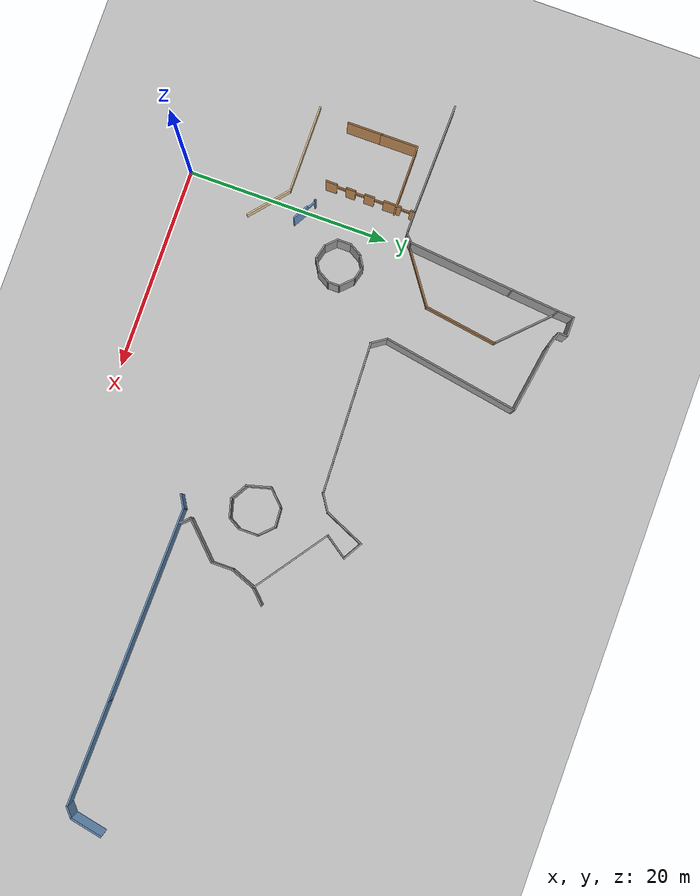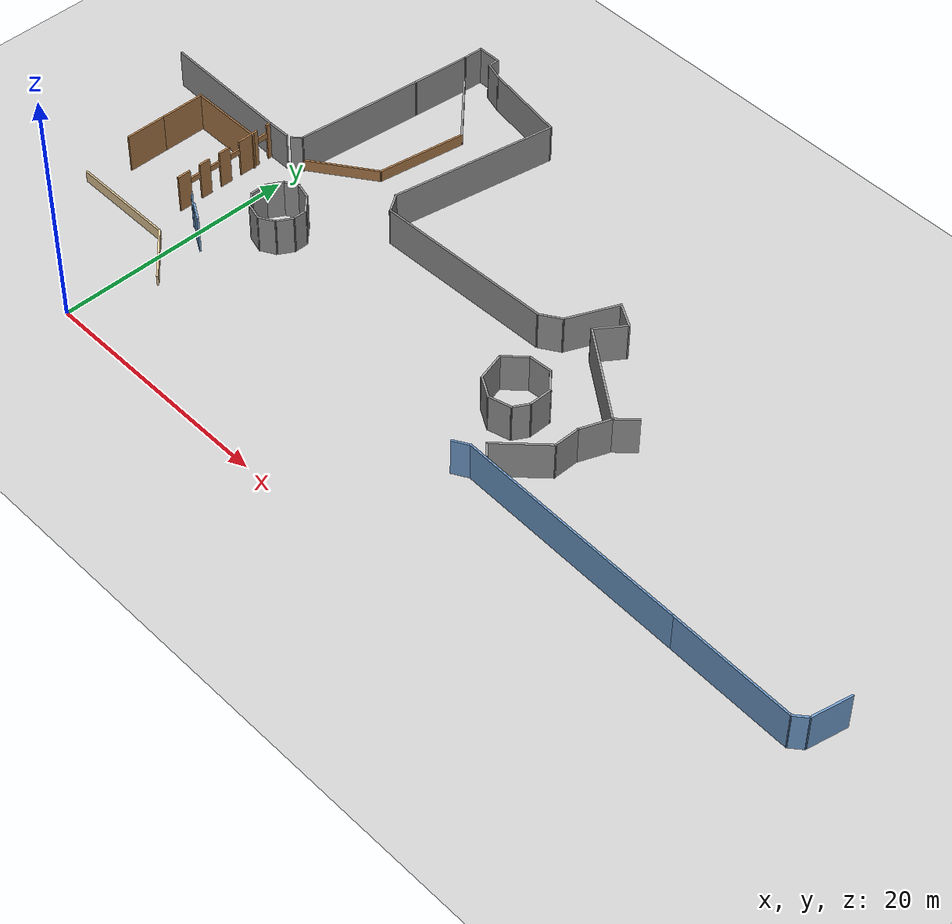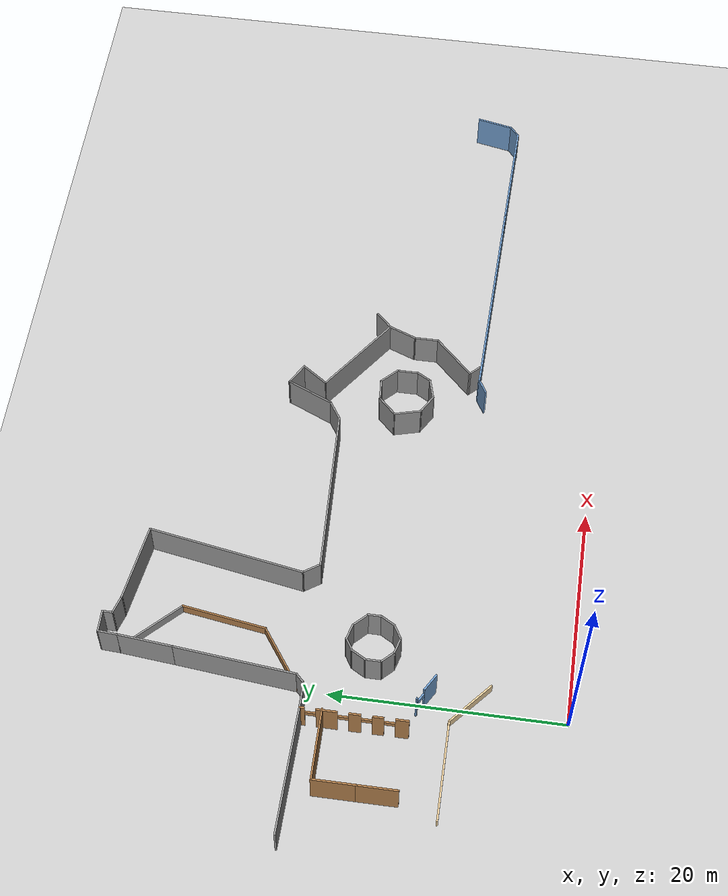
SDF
<sdf version="1.6">
 <world name="default">
  <model name="ground_plane">
   <static>1</static>
   <link name="link">
    <collision name="collision">
     <geometry><plane><normal>0 0 1</normal><size>100 100</size></plane></geometry>
     <surface><friction><ode><mu>100</mu><mu2>50</mu2></ode></friction></surface>
    </collision>
    <visual name="visual">
     <cast_shadows>0</cast_shadows>
     <geometry><plane><normal>0 0 1</normal><size>100 100</size></plane></geometry>
     <material>
      <script><uri>file://media/materials/scripts/gazebo.material</uri><name>Gazebo/Grey</name></script>
     </material>
    </visual>
   </link>
  </model>
  <model name="compound">
   <pose>3.54588 -0.628009 0 0 -0 0</pose>
   <link name="Wall_155">
    <collision name="Wall_155_Collision">
     <geometry><box><size>1.5 0.15 4.0</size></box></geometry>
     <pose>0 0 1.25 0 -0 0</pose>
    </collision>
    <visual name="Wall_155_Visual">
     <pose>0 0 1.25 0 -0 0</pose>
     <geometry><box><size>1.5 0.15 4.0</size></box></geometry>
     <material>
      <script><uri>file://media/materials/scripts/gazebo.material</uri><name>Gazebo/Grey</name></script>
      <ambient>0.447059 0.623529 0.811765 1</ambient>
     </material>
     <meta><layer>0</layer></meta>
    </visual>
    <pose>26.7869 10.9559 0 0 -0 0.523599</pose>
   </link>
   <link name="Wall_156">
    <collision name="Wall_156_Collision">
     <geometry><box><size>19.471 0.15 4.0</size></box></geometry>
     <pose>0 0 1.25 0 -0 0</pose>
    </collision>
    <visual name="Wall_156_Visual">
     <pose>0 0 1.25 0 -0 0</pose>
     <geometry><box><size>19.471 0.15 4.0</size></box></geometry>
     <material>
      <script><uri>file://media/materials/scripts/gazebo.material</uri><name>Gazebo/Grey</name></script>
      <ambient>0.447059 0.623529 0.811765 1</ambient>
     </material>
     <meta><layer>0</layer></meta>
    </visual>
    <pose>37.0288 11.0482 0 0 -0 -0.025385</pose>
   </link>
   <link name="Wall_158">
    <collision name="Wall_158_Collision">
     <geometry><box><size>10.4431 0.15 4.0</size></box></geometry>
     <pose>0 0 1.25 0 -0 0</pose>
    </collision>
    <visual name="Wall_158_Visual">
     <pose>0 0 1.25 0 -0 0</pose>
     <geometry><box><size>10.4431 0.15 4.0</size></box></geometry>
     <material>
      <script><uri>file://media/materials/scripts/gazebo.material</uri><name>Gazebo/Grey</name></script>
      <ambient>0.447059 0.623529 0.811765 1</ambient>
     </material>
     <meta><layer>0</layer></meta>
    </visual>
    <pose>51.8309 10.6647 0 0 -0 -0.026884</pose>
   </link>
   <link name="Wall_159">
    <collision name="Wall_159_Collision">
     <geometry><box><size>1.32796 0.15 4.0</size></box></geometry>
     <pose>0 0 1.25 0 -0 0</pose>
    </collision>
    <visual name="Wall_159_Visual">
     <pose>0 0 1.25 0 -0 0</pose>
     <geometry><box><size>1.32796 0.15 4.0</size></box></geometry>
     <material>
      <script><uri>file://media/materials/scripts/gazebo.material</uri><name>Gazebo/Grey</name></script>
      <ambient>0.447059 0.623529 0.811765 1</ambient>
     </material>
     <meta><layer>0</layer></meta>
    </visual>
    <pose>57.4252 10.9068 0 0 -0 0.702257</pose>
   </link>
   <link name="Wall_160">
    <collision name="Wall_160_Collision">
     <geometry><box><size>3.36522 0.15 4.0</size></box></geometry>
     <pose>0 0 1.25 0 -0 0</pose>
    </collision>
    <visual name="Wall_160_Visual">
     <pose>0 0 1.25 0 -0 0</pose>
     <geometry><box><size>3.36522 0.15 4.0</size></box></geometry>
     <material>
      <script><uri>file://media/materials/scripts/gazebo.material</uri><name>Gazebo/Grey</name></script>
      <ambient>0.447059 0.623529 0.811765 1</ambient>
     </material>
     <meta><layer>0</layer></meta>
    </visual>
    <pose>58.2034 12.8609 0 0 -0 1.36496</pose>
   </link>
   <link name="Wall_162">
    <collision name="Wall_162_Collision">
     <geometry><box><size>1.5 0.15 4.0</size></box></geometry>
     <pose>0 0 1.25 0 -0 0</pose>
    </collision>
    <visual name="Wall_162_Visual">
     <pose>0 0 1.25 0 -0 0</pose>
     <geometry><box><size>1.5 0.15 4.0</size></box></geometry>
     <material>
      <script><uri>file://media/materials/scripts/gazebo.material</uri><name>Gazebo/Grey</name></script>
      <ambient>1 1 1 1</ambient>
     </material>
     <meta><layer>0</layer></meta>
    </visual>
    <pose>-1.13646 18.3114 0 0 -0 -2.0944</pose>
   </link>
   <link name="Wall_163">
    <collision name="Wall_163_Collision">
     <geometry><box><size>1.5 0.15 4.0</size></box></geometry>
     <pose>0 0 1.25 0 -0 0</pose>
    </collision>
    <visual name="Wall_163_Visual">
     <pose>0 0 1.25 0 -0 0</pose>
     <geometry><box><size>1.5 0.15 4.0</size></box></geometry>
     <material>
      <script><uri>file://media/materials/scripts/gazebo.material</uri><name>Gazebo/Grey</name></script>
      <ambient>1 1 1 1</ambient>
     </material>
     <meta><layer>0</layer></meta>
    </visual>
    <pose>-1.47396 17.0519 0 0 -0 -1.5708</pose>
   </link>
   <link name="Wall_164">
    <collision name="Wall_164_Collision">
     <geometry><box><size>1.5 0.15 4.0</size></box></geometry>
     <pose>0 0 1.25 0 -0 0</pose>
    </collision>
    <visual name="Wall_164_Visual">
     <pose>0 0 1.25 0 -0 0</pose>
     <geometry><box><size>1.5 0.15 4.0</size></box></geometry>
     <material>
      <script><uri>file://media/materials/scripts/gazebo.material</uri><name>Gazebo/Grey</name></script>
      <ambient>1 1 1 1</ambient>
     </material>
     <meta><layer>0</layer></meta>
    </visual>
    <pose>-0.996662 15.8996 0 0 -0 -0.785398</pose>
   </link>
   <link name="Wall_165">
    <collision name="Wall_165_Collision">
     <geometry><box><size>1.5 0.15 4.0</size></box></geometry>
     <pose>0 0 1.25 0 -0 0</pose>
    </collision>
    <visual name="Wall_165_Visual">
     <pose>0 0 1.25 0 -0 0</pose>
     <geometry><box><size>1.5 0.15 4.0</size></box></geometry>
     <material>
      <script><uri>file://media/materials/scripts/gazebo.material</uri><name>Gazebo/Grey</name></script>
      <ambient>1 1 1 1</ambient>
     </material>
     <meta><layer>0</layer></meta>
    </visual>
    <pose>0.132635 15.2476 0 0 -0 -0.261799</pose>
   </link>
   <link name="Wall_166">
    <collision name="Wall_166_Collision">
     <geometry><box><size>1.5 0.15 4.0</size></box></geometry>
     <pose>0 0 1.25 0 -0 0</pose>
    </collision>
    <visual name="Wall_166_Visual">
     <pose>0 0 1.25 0 -0 0</pose>
     <geometry><box><size>1.5 0.15 4.0</size></box></geometry>
     <material>
      <script><uri>file://media/materials/scripts/gazebo.material</uri><name>Gazebo/Grey</name></script>
      <ambient>1 1 1 1</ambient>
     </material>
     <meta><layer>0</layer></meta>
    </visual>
    <pose>1.3692 15.4104 0 0 -0 0.523599</pose>
   </link>
   <link name="Wall_167">
    <collision name="Wall_167_Collision">
     <geometry><box><size>1.5 0.15 4.0</size></box></geometry>
     <pose>0 0 1.25 0 -0 0</pose>
    </collision>
    <visual name="Wall_167_Visual">
     <pose>0 0 1.25 0 -0 0</pose>
     <geometry><box><size>1.5 0.15 4.0</size></box></geometry>
     <material>
      <script><uri>file://media/materials/scripts/gazebo.material</uri><name>Gazebo/Grey</name></script>
      <ambient>1 1 1 1</ambient>
     </material>
     <meta><layer>0</layer></meta>
    </visual>
    <pose>2.29127 16.3324 0 0 -0 1.0472</pose>
   </link>
   <link name="Wall_168">
    <collision name="Wall_168_Collision">
     <geometry><box><size>1.25 0.15 4.0</size></box></geometry>
     <pose>0 0 1.25 0 -0 0</pose>
    </collision>
    <visual name="Wall_168_Visual">
     <pose>0 0 1.25 0 -0 0</pose>
     <geometry><box><size>1.25 0.15 4.0</size></box></geometry>
     <material>
      <script><uri>file://media/materials/scripts/gazebo.material</uri><name>Gazebo/Grey</name></script>
      <ambient>1 1 1 1</ambient>
     </material>
     <meta><layer>0</layer></meta>
    </visual>
    <pose>2.62877 17.467 0 0 -0 1.5708</pose>
   </link>
   <link name="Wall_169">
    <collision name="Wall_169_Collision">
     <geometry><box><size>1.75 0.15 4.0</size></box></geometry>
     <pose>0 0 1.25 0 -0 0</pose>
    </collision>
    <visual name="Wall_169_Visual">
     <pose>0 0 1.25 0 -0 0</pose>
     <geometry><box><size>1.75 0.15 4.0</size></box></geometry>
     <material>
      <script><uri>file://media/materials/scripts/gazebo.material</uri><name>Gazebo/Grey</name></script>
      <ambient>1 1 1 1</ambient>
     </material>
     <meta><layer>0</layer></meta>
    </visual>
    <pose>2.06308 18.5827 0 0 -0 2.35619</pose>
   </link>
   <link name="Wall_170">
    <collision name="Wall_170_Collision">
     <geometry><box><size>1.5 0.15 4.0</size></box></geometry>
     <pose>0 0 1.25 0 -0 0</pose>
    </collision>
    <visual name="Wall_170_Visual">
     <pose>0 0 1.25 0 -0 0</pose>
     <geometry><box><size>1.5 0.15 4.0</size></box></geometry>
     <material>
      <script><uri>file://media/materials/scripts/gazebo.material</uri><name>Gazebo/Grey</name></script>
      <ambient>1 1 1 1</ambient>
     </material>
     <meta><layer>0</layer></meta>
    </visual>
    <pose>0.845398 19.3231 0 0 -0 2.87979</pose>
   </link>
   <link name="Wall_171">
    <collision name="Wall_171_Collision">
     <geometry><box><size>1.31056 0.15 4.0</size></box></geometry>
     <pose>0 0 1.25 0 -0 0</pose>
    </collision>
    <visual name="Wall_171_Visual">
     <pose>0 0 1.25 0 -0 0</pose>
     <geometry><box><size>1.31056 0.15 4.0</size></box></geometry>
     <material>
      <script><uri>file://media/materials/scripts/gazebo.material</uri><name>Gazebo/Grey</name></script>
      <ambient>1 1 1 1</ambient>
     </material>
     <meta><layer>0</layer></meta>
    </visual>
    <pose>-0.30278 19.1969 0 0 -0 -2.59647</pose>
   </link>
   <link name="Wall_173">
    <pose>-6.427 17.9515 0 0 -0 1.5708</pose>
    <visual name="Wall_173_Visual_0">
     <pose>-3.92991 0 1.25 0 -0 0</pose>
     <geometry><box><size>1.14018 0.15 4.0</size></box></geometry>
     <material>
      <script><uri>file://media/materials/scripts/gazebo.material</uri><name>Gazebo/Wood</name></script>
      <ambient>1 1 1 1</ambient>
     </material>
     <meta><layer>0</layer></meta>
    </visual>
    <collision name="Wall_173_Collision_0">
     <geometry><box><size>1.14018 0.15 4.0</size></box></geometry>
     <pose>-3.92991 0 1.25 0 -0 0</pose>
    </collision>
    <visual name="Wall_173_Visual_1">
     <pose>-1.97615 0 1.25 0 -0 0</pose>
     <geometry><box><size>0.967346 0.15 4.0</size></box></geometry>
     <material>
      <script><uri>file://media/materials/scripts/gazebo.material</uri><name>Gazebo/Wood</name></script>
      <ambient>1 1 1 1</ambient>
     </material>
     <meta><layer>0</layer></meta>
    </visual>
    <collision name="Wall_173_Collision_1">
     <geometry><box><size>0.967346 0.15 4.0</size></box></geometry>
     <pose>-1.97615 0 1.25 0 -0 0</pose>
    </collision>
    <visual name="Wall_173_Visual_2">
     <pose>-0.082504 0 1.25 0 -0 0</pose>
     <geometry><box><size>1.01995 0.15 4.0</size></box></geometry>
     <material>
      <script><uri>file://media/materials/scripts/gazebo.material</uri><name>Gazebo/Wood</name></script>
      <ambient>1 1 1 1</ambient>
     </material>
     <meta><layer>0</layer></meta>
    </visual>
    <collision name="Wall_173_Collision_2">
     <geometry><box><size>1.01995 0.15 4.0</size></box></geometry>
     <pose>-0.082504 0 1.25 0 -0 0</pose>
    </collision>
    <visual name="Wall_173_Visual_3">
     <pose>2.2188 0 1.25 0 -0 0</pose>
     <geometry><box><size>1.78267 0.15 4.0</size></box></geometry>
     <material>
      <script><uri>file://media/materials/scripts/gazebo.material</uri><name>Gazebo/Wood</name></script>
      <ambient>1 1 1 1</ambient>
     </material>
     <meta><layer>0</layer></meta>
    </visual>
    <collision name="Wall_173_Collision_3">
     <geometry><box><size>1.78267 0.15 4.0</size></box></geometry>
     <pose>2.2188 0 1.25 0 -0 0</pose>
    </collision>
    <visual name="Wall_173_Visual_4">
     <pose>4.25507 0 1.25 0 -0 0</pose>
     <geometry><box><size>0.489864 0.15 4.0</size></box></geometry>
     <material>
      <script><uri>file://media/materials/scripts/gazebo.material</uri><name>Gazebo/Wood</name></script>
      <ambient>1 1 1 1</ambient>
     </material>
     <meta><layer>0</layer></meta>
    </visual>
    <collision name="Wall_173_Collision_4">
     <geometry><box><size>0.489864 0.15 4.0</size></box></geometry>
     <pose>4.25507 0 1.25 0 -0 0</pose>
    </collision>
    <visual name="Wall_173_Visual_5">
     <pose>-2.90982 0 2.25 0 -0 0</pose>
     <geometry><box><size>0.9 0.15 0.5</size></box></geometry>
     <material>
      <script><uri>file://media/materials/scripts/gazebo.material</uri><name>Gazebo/Wood</name></script>
      <ambient>1 1 1 1</ambient>
     </material>
     <meta><layer>0</layer></meta>
    </visual>
    <collision name="Wall_173_Collision_5">
     <geometry><box><size>0.9 0.15 0.5</size></box></geometry>
     <pose>-2.90982 0 2.25 0 -0 0</pose>
    </collision>
    <visual name="Wall_173_Visual_6">
     <pose>-1.04248 0 2.25 0 -0 0</pose>
     <geometry><box><size>0.9 0.15 0.5</size></box></geometry>
     <material>
      <script><uri>file://media/materials/scripts/gazebo.material</uri><name>Gazebo/Wood</name></script>
      <ambient>1 1 1 1</ambient>
     </material>
     <meta><layer>0</layer></meta>
    </visual>
    <collision name="Wall_173_Collision_6">
     <geometry><box><size>0.9 0.15 0.5</size></box></geometry>
     <pose>-1.04248 0 2.25 0 -0 0</pose>
    </collision>
    <visual name="Wall_173_Visual_7">
     <pose>0.87747 0 2.25 0 -0 0</pose>
     <geometry><box><size>0.9 0.15 0.5</size></box></geometry>
     <material>
      <script><uri>file://media/materials/scripts/gazebo.material</uri><name>Gazebo/Wood</name></script>
      <ambient>1 1 1 1</ambient>
     </material>
     <meta><layer>0</layer></meta>
    </visual>
    <collision name="Wall_173_Collision_7">
     <geometry><box><size>0.9 0.15 0.5</size></box></geometry>
     <pose>0.87747 0 2.25 0 -0 0</pose>
    </collision>
    <visual name="Wall_173_Visual_8">
     <pose>3.56014 0 2.25 0 -0 0</pose>
     <geometry><box><size>0.9 0.15 0.5</size></box></geometry>
     <material>
      <script><uri>file://media/materials/scripts/gazebo.material</uri><name>Gazebo/Wood</name></script>
      <ambient>1 1 1 1</ambient>
     </material>
     <meta><layer>0</layer></meta>
    </visual>
    <collision name="Wall_173_Collision_8">
     <geometry><box><size>0.9 0.15 0.5</size></box></geometry>
     <pose>3.56014 0 2.25 0 -0 0</pose>
    </collision>
   </link>
   <link name="Wall_174">
    <collision name="Wall_174_Collision">
     <geometry><box><size>2 0.15 4.0</size></box></geometry>
     <pose>0 0 1.25 0 -0 0</pose>
    </collision>
    <visual name="Wall_174_Visual">
     <pose>0 0 1.25 0 -0 0</pose>
     <geometry><box><size>2 0.15 4.0</size></box></geometry>
     <material>
      <script><uri>file://media/materials/scripts/gazebo.material</uri><name>Gazebo/Grey</name></script>
      <ambient>1 1 1 1</ambient>
     </material>
     <meta><layer>0</layer></meta>
    </visual>
    <pose>-5.502 22.3765 0 0 -0 0</pose>
   </link>
   <link name="Wall_176">
    <collision name="Wall_176_Collision">
     <geometry><box><size>1 0.15 4.0</size></box></geometry>
     <pose>0 0 1.25 0 -0 0</pose>
    </collision>
    <visual name="Wall_176_Visual">
     <pose>0 0 1.25 0 -0 0</pose>
     <geometry><box><size>1 0.15 4.0</size></box></geometry>
     <material>
      <script><uri>file://media/materials/scripts/gazebo.material</uri><name>Gazebo/Grey</name></script>
      <ambient>1 1 1 1</ambient>
     </material>
     <meta><layer>0</layer></meta>
    </visual>
    <pose>-3.83936 22.7761 0 0 -0 0.785118</pose>
   </link>
   <link name="Wall_180">
    <collision name="Wall_180_Collision">
     <geometry><box><size>10.6661 0.15 4.0</size></box></geometry>
     <pose>0 0 1.25 0 -0 0</pose>
    </collision>
    <visual name="Wall_180_Visual">
     <pose>0 0 1.25 0 -0 0</pose>
     <geometry><box><size>10.6661 0.15 4.0</size></box></geometry>
     <material>
      <script><uri>file://media/materials/scripts/gazebo.material</uri><name>Gazebo/Grey</name></script>
      <ambient>1 1 1 1</ambient>
     </material>
     <meta><layer>0</layer></meta>
    </visual>
    <pose>-3.0135 28.3084 0 0 -0 1.47074</pose>
   </link>
   <link name="Wall_182">
    <collision name="Wall_182_Collision">
     <geometry><box><size>6.11376 0.15 1</size></box></geometry>
     <pose>0 0 0.5 0 -0 0</pose>
    </collision>
    <visual name="Wall_182_Visual">
     <pose>0 0 0.5 0 -0 0</pose>
     <geometry><box><size>6.11376 0.15 1</size></box></geometry>
     <material>
      <script><uri>file://media/materials/scripts/gazebo.material</uri><name>Gazebo/Wood</name></script>
      <ambient>1 1 1 1</ambient>
     </material>
     <meta><layer>0</layer></meta>
    </visual>
    <pose>-1.10373 24.7976 0 0 -0 0.615259</pose>
   </link>
   <link name="Wall_186">
    <collision name="Wall_186_Collision">
     <geometry><box><size>7.48593 0.15 1</size></box></geometry>
     <pose>0 0 0.5 0 -0 0</pose>
    </collision>
    <visual name="Wall_186_Visual">
     <pose>0 0 0.5 0 -0 0</pose>
     <geometry><box><size>7.48593 0.15 1</size></box></geometry>
     <material>
      <script><uri>file://media/materials/scripts/gazebo.material</uri><name>Gazebo/Wood</name></script>
      <ambient>1 1 1 1</ambient>
     </material>
     <meta><layer>0</layer></meta>
    </visual>
    <pose>1.89127 30.1436 0 0 -0 1.41752</pose>
   </link>
   <link name="Wall_187">
    <collision name="Wall_187_Collision">
     <geometry><box><size>6.5 0.15 1</size></box></geometry>
     <pose>0 0 0.5 0 -0 0</pose>
    </collision>
    <visual name="Wall_187_Visual">
     <pose>0 0 0.5 0 -0 0</pose>
     <geometry><box><size>6.5 0.15 1</size></box></geometry>
     <material>
      <script><uri>file://media/materials/scripts/gazebo.material</uri><name>Gazebo/Grey</name></script>
      <ambient>1 1 1 1</ambient>
     </material>
     <meta><layer>0</layer></meta>
    </visual>
    <pose>0.206264 36.0136 0 0 -0 2.35619</pose>
   </link>
   <link name="Wall_188">
    <collision name="Wall_188_Collision">
     <geometry><box><size>4.89022 0.15 4.0</size></box></geometry>
     <pose>0 0 1.25 0 -0 0</pose>
    </collision>
    <visual name="Wall_188_Visual">
     <pose>0 0 1.25 0 -0 0</pose>
     <geometry><box><size>4.89022 0.15 4.0</size></box></geometry>
     <material>
      <script><uri>file://media/materials/scripts/gazebo.material</uri><name>Gazebo/Grey</name></script>
      <ambient>1 1 1 1</ambient>
     </material>
     <meta><layer>0</layer></meta>
    </visual>
    <pose>-2.2635 35.8994 0 0 -0 -1.66578</pose>
   </link>
   <link name="Wall_190">
    <collision name="Wall_190_Collision">
     <geometry><box><size>1.79206 0.15 4.0</size></box></geometry>
     <pose>0 0 1.25 0 -0 0</pose>
    </collision>
    <visual name="Wall_190_Visual">
     <pose>0 0 1.25 0 -0 0</pose>
     <geometry><box><size>1.79206 0.15 4.0</size></box></geometry>
     <material>
      <script><uri>file://media/materials/scripts/gazebo.material</uri><name>Gazebo/Grey</name></script>
      <ambient>1 1 1 1</ambient>
     </material>
     <meta><layer>0</layer></meta>
    </visual>
    <pose>-1.98906 39.0783 0 0 -0 1.51027</pose>
   </link>
   <link name="Wall_191">
    <collision name="Wall_191_Collision">
     <geometry><box><size>2 0.15 4.0</size></box></geometry>
     <pose>0 0 1.25 0 -0 0</pose>
    </collision>
    <visual name="Wall_191_Visual">
     <pose>0 0 1.25 0 -0 0</pose>
     <geometry><box><size>2 0.15 4.0</size></box></geometry>
     <material>
      <script><uri>file://media/materials/scripts/gazebo.material</uri><name>Gazebo/Grey</name></script>
      <ambient>1 1 1 1</ambient>
     </material>
     <meta><layer>0</layer></meta>
    </visual>
    <pose>-1.01438 39.8981 0 0 -0 0</pose>
   </link>
   <link name="Wall_192">
    <collision name="Wall_192_Collision">
     <geometry><box><size>1 0.15 4.0</size></box></geometry>
     <pose>0 0 1.25 0 -0 0</pose>
    </collision>
    <visual name="Wall_192_Visual">
     <pose>0 0 1.25 0 -0 0</pose>
     <geometry><box><size>1 0.15 4.0</size></box></geometry>
     <material>
      <script><uri>file://media/materials/scripts/gazebo.material</uri><name>Gazebo/Grey</name></script>
      <ambient>1 1 1 1</ambient>
     </material>
     <meta><layer>0</layer></meta>
    </visual>
    <pose>-0.089376 39.4731 0 0 -0 -1.5708</pose>
   </link>
   <link name="Wall_193">
    <collision name="Wall_193_Collision">
     <geometry><box><size>1.7066 0.15 4.0</size></box></geometry>
     <pose>0 0 1.25 0 -0 0</pose>
    </collision>
    <visual name="Wall_193_Visual">
     <pose>0 0 1.25 0 -0 0</pose>
     <geometry><box><size>1.7066 0.15 4.0</size></box></geometry>
     <material>
      <script><uri>file://media/materials/scripts/gazebo.material</uri><name>Gazebo/Grey</name></script>
      <ambient>1 1 1 1</ambient>
     </material>
     <meta><layer>0</layer></meta>
    </visual>
    <pose>0.655142 38.8213 0 0 -0 -0.295694</pose>
   </link>
   <link name="Wall_194">
    <collision name="Wall_194_Collision">
     <geometry><box><size>7.02695 0.15 4.0</size></box></geometry>
     <pose>0 0 1.25 0 -0 0</pose>
    </collision>
    <visual name="Wall_194_Visual">
     <pose>0 0 1.25 0 -0 0</pose>
     <geometry><box><size>7.02695 0.15 4.0</size></box></geometry>
     <material>
      <script><uri>file://media/materials/scripts/gazebo.material</uri><name>Gazebo/Grey</name></script>
      <ambient>1 1 1 1</ambient>
     </material>
     <meta><layer>0</layer></meta>
    </visual>
    <pose>4.79588 38.057 0 0 -0 -0.156948</pose>
   </link>
   <link name="Wall_196">
    <collision name="Wall_196_Collision">
     <geometry><box><size>13.8798 0.15 4.0</size></box></geometry>
     <pose>0 0 1.25 0 -0 0</pose>
    </collision>
    <visual name="Wall_196_Visual">
     <pose>0 0 1.25 0 -0 0</pose>
     <geometry><box><size>13.8798 0.15 4.0</size></box></geometry>
     <material>
      <script><uri>file://media/materials/scripts/gazebo.material</uri><name>Gazebo/Grey</name></script>
      <ambient>1 1 1 1</ambient>
     </material>
     <meta><layer>0</layer></meta>
    </visual>
    <pose>7.0175 30.7559 0 0 -0 -1.74274</pose>
   </link>
   <link name="Wall_197">
    <collision name="Wall_197_Collision">
     <geometry><box><size>1.79195 0.15 4.0</size></box></geometry>
     <pose>0 0 1.25 0 -0 0</pose>
    </collision>
    <visual name="Wall_197_Visual">
     <pose>0 0 1.25 0 -0 0</pose>
     <geometry><box><size>1.79195 0.15 4.0</size></box></geometry>
     <material>
      <script><uri>file://media/materials/scripts/gazebo.material</uri><name>Gazebo/Grey</name></script>
      <ambient>1 1 1 1</ambient>
     </material>
     <meta><layer>0</layer></meta>
    </visual>
    <pose>6.30291 23.3122 0 0 -0 -0.976037</pose>
   </link>
   <link name="Wall_198">
    <collision name="Wall_198_Collision">
     <geometry><box><size>14.9991 0.15 4.0</size></box></geometry>
     <pose>0 0 1.25 0 -0 0</pose>
    </collision>
    <visual name="Wall_198_Visual">
     <pose>0 0 1.25 0 -0 0</pose>
     <geometry><box><size>14.9991 0.15 4.0</size></box></geometry>
     <material>
      <script><uri>file://media/materials/scripts/gazebo.material</uri><name>Gazebo/Grey</name></script>
      <ambient>1 1 1 1</ambient>
     </material>
     <meta><layer>0</layer></meta>
    </visual>
    <pose>14.1829 22.8922 0 0 -0 0.035026</pose>
   </link>
   <link name="Wall_199">
    <collision name="Wall_199_Collision">
     <geometry><box><size>2.003 0.15 4.0</size></box></geometry>
     <pose>0 0 1.25 0 -0 0</pose>
    </collision>
    <visual name="Wall_199_Visual">
     <pose>0 0 1.25 0 -0 0</pose>
     <geometry><box><size>2.003 0.15 4.0</size></box></geometry>
     <material>
      <script><uri>file://media/materials/scripts/gazebo.material</uri><name>Gazebo/Grey</name></script>
      <ambient>1 1 1 1</ambient>
     </material>
     <meta><layer>0</layer></meta>
    </visual>
    <pose>22.3829 23.6522 0 0 -0 0.57004</pose>
   </link>
   <link name="Wall_200">
    <collision name="Wall_200_Collision">
     <geometry><box><size>4.4835 0.15 4.0</size></box></geometry>
     <pose>0 0 1.25 0 -0 0</pose>
    </collision>
    <visual name="Wall_200_Visual">
     <pose>0 0 1.25 0 -0 0</pose>
     <geometry><box><size>4.4835 0.15 4.0</size></box></geometry>
     <material>
      <script><uri>file://media/materials/scripts/gazebo.material</uri><name>Gazebo/Grey</name></script>
      <ambient>1 1 1 1</ambient>
     </material>
     <meta><layer>0</layer></meta>
    </visual>
    <pose>24.0429 26.1322 0 0 -0 1.15257</pose>
   </link>
   <link name="Wall_201">
    <collision name="Wall_201_Collision">
     <geometry><box><size>2.22885 0.15 4.0</size></box></geometry>
     <pose>0 0 1.25 0 -0 0</pose>
    </collision>
    <visual name="Wall_201_Visual">
     <pose>0 0 1.25 0 -0 0</pose>
     <geometry><box><size>2.22885 0.15 4.0</size></box></geometry>
     <material>
      <script><uri>file://media/materials/scripts/gazebo.material</uri><name>Gazebo/Grey</name></script>
      <ambient>1 1 1 1</ambient>
     </material>
     <meta><layer>0</layer></meta>
    </visual>
    <pose>25.8229 27.5922 0 0 -0 -0.523919</pose>
   </link>
   <link name="Wall_202">
    <collision name="Wall_202_Collision">
     <geometry><box><size>2.79121 0.15 4.0</size></box></geometry>
     <pose>0 0 1.25 0 -0 0</pose>
    </collision>
    <visual name="Wall_202_Visual">
     <pose>0 0 1.25 0 -0 0</pose>
     <geometry><box><size>2.79121 0.15 4.0</size></box></geometry>
     <material>
      <script><uri>file://media/materials/scripts/gazebo.material</uri><name>Gazebo/Grey</name></script>
      <ambient>1 1 1 1</ambient>
     </material>
     <meta><layer>0</layer></meta>
    </visual>
    <pose>25.9629 25.9922 0 0 -0 -2.184</pose>
   </link>
   <link name="Wall_203">
    <collision name="Wall_203_Collision">
     <geometry><box><size>8.69653 0.15 4.0</size></box></geometry>
     <pose>0 0 1.25 0 -0 0</pose>
    </collision>
    <visual name="Wall_203_Visual">
     <pose>0 0 1.25 0 -0 0</pose>
     <geometry><box><size>8.69653 0.15 4.0</size></box></geometry>
     <material>
      <script><uri>file://media/materials/scripts/gazebo.material</uri><name>Gazebo/Grey</name></script>
      <ambient>1 1 1 1</ambient>
     </material>
     <meta><layer>0</layer></meta>
    </visual>
    <pose>28.6829 22.4322 0 0 -0 -0.619161</pose>
   </link>
   <link name="Wall_204">
    <collision name="Wall_204_Collision">
     <geometry><box><size>2 0.15 4.0</size></box></geometry>
     <pose>0 0 1.25 0 -0 0</pose>
    </collision>
    <visual name="Wall_204_Visual">
     <pose>0 0 1.25 0 -0 0</pose>
     <geometry><box><size>2 0.15 4.0</size></box></geometry>
     <material>
      <script><uri>file://media/materials/scripts/gazebo.material</uri><name>Gazebo/Grey</name></script>
      <ambient>1 1 1 1</ambient>
     </material>
     <meta><layer>0</layer></meta>
    </visual>
    <pose>32.817 20.6063 0 0 -0 0.785398</pose>
   </link>
   <link name="Wall_206">
    <collision name="Wall_206_Collision">
     <geometry><box><size>1.25 0.15 4.0</size></box></geometry>
     <pose>0 0 1.25 0 -0 0</pose>
    </collision>
    <visual name="Wall_206_Visual">
     <pose>0 0 1.25 0 -0 0</pose>
     <geometry><box><size>1.25 0.15 4.0</size></box></geometry>
     <material>
      <script><uri>file://media/materials/scripts/gazebo.material</uri><name>Gazebo/Grey</name></script>
      <ambient>1 1 1 1</ambient>
     </material>
     <meta><layer>0</layer></meta>
    </visual>
    <pose>28.3697 11.8257 0 0 -0 2.35619</pose>
   </link>
   <link name="Wall_207">
    <collision name="Wall_207_Collision">
     <geometry><box><size>4.75 0.15 4.0</size></box></geometry>
     <pose>0 0 1.25 0 -0 0</pose>
    </collision>
    <visual name="Wall_207_Visual">
     <pose>0 0 1.25 0 -0 0</pose>
     <geometry><box><size>4.75 0.15 4.0</size></box></geometry>
     <material>
      <script><uri>file://media/materials/scripts/gazebo.material</uri><name>Gazebo/Grey</name></script>
      <ambient>1 1 1 1</ambient>
     </material>
     <meta><layer>0</layer></meta>
    </visual>
    <pose>29.6071 13.8409 0 0 -0 0.785398</pose>
   </link>
   <link name="Wall_208">
    <collision name="Wall_208_Collision">
     <geometry><box><size>2.25 0.15 4.0</size></box></geometry>
     <pose>0 0 1.25 0 -0 0</pose>
    </collision>
    <visual name="Wall_208_Visual">
     <pose>0 0 1.25 0 -0 0</pose>
     <geometry><box><size>2.25 0.15 4.0</size></box></geometry>
     <material>
      <script><uri>file://media/materials/scripts/gazebo.material</uri><name>Gazebo/Grey</name></script>
      <ambient>1 1 1 1</ambient>
     </material>
     <meta><layer>0</layer></meta>
    </visual>
    <pose>31.2335 16.5173 0 0 -0 1.5708</pose>
   </link>
   <link name="Wall_209">
    <collision name="Wall_209_Collision">
     <geometry><box><size>2.70963 0.15 4.0</size></box></geometry>
     <pose>0 0 1.25 0 -0 0</pose>
    </collision>
    <visual name="Wall_209_Visual">
     <pose>0 0 1.25 0 -0 0</pose>
     <geometry><box><size>2.70963 0.15 4.0</size></box></geometry>
     <material>
      <script><uri>file://media/materials/scripts/gazebo.material</uri><name>Gazebo/Grey</name></script>
      <ambient>1 1 1 1</ambient>
     </material>
     <meta><layer>0</layer></meta>
    </visual>
    <pose>31.6982 18.7597 0 0 -0 1.19919</pose>
   </link>
   <link name="Wall_214">
    <collision name="Wall_214_Collision">
     <geometry><box><size>2.25 0.15 4.0</size></box></geometry>
     <pose>0 0 1.25 0 -0 0</pose>
    </collision>
    <visual name="Wall_214_Visual">
     <pose>0 0 1.25 0 -0 0</pose>
     <geometry><box><size>2.25 0.15 4.0</size></box></geometry>
     <material>
      <script><uri>file://media/materials/scripts/gazebo.material</uri><name>Gazebo/Grey</name></script>
      <ambient>1 1 1 1</ambient>
     </material>
     <meta><layer>0</layer></meta>
    </visual>
    <pose>23.4842 19.1257 0 0 -0 -2.35619</pose>
   </link>
   <link name="Wall_215">
    <collision name="Wall_215_Collision">
     <geometry><box><size>2.5 0.15 4.0</size></box></geometry>
     <pose>0 0 1.25 0 -0 0</pose>
    </collision>
    <visual name="Wall_215_Visual">
     <pose>0 0 1.25 0 -0 0</pose>
     <geometry><box><size>2.5 0.15 4.0</size></box></geometry>
     <material>
      <script><uri>file://media/materials/scripts/gazebo.material</uri><name>Gazebo/Grey</name></script>
      <ambient>1 1 1 1</ambient>
     </material>
     <meta><layer>0</layer></meta>
    </visual>
    <pose>23.0458 17.2483 0 0 -0 -1.309</pose>
   </link>
   <link name="Wall_216">
    <collision name="Wall_216_Collision">
     <geometry><box><size>2 0.15 4.0</size></box></geometry>
     <pose>0 0 1.25 0 -0 0</pose>
    </collision>
    <visual name="Wall_216_Visual">
     <pose>0 0 1.25 0 -0 0</pose>
     <geometry><box><size>2 0.15 4.0</size></box></geometry>
     <material>
      <script><uri>file://media/materials/scripts/gazebo.material</uri><name>Gazebo/Grey</name></script>
      <ambient>1 1 1 1</ambient>
     </material>
     <meta><layer>0</layer></meta>
    </visual>
    <pose>24.151 15.6508 0 0 -0 -0.523599</pose>
   </link>
   <link name="Wall_217">
    <collision name="Wall_217_Collision">
     <geometry><box><size>2 0.15 4.0</size></box></geometry>
     <pose>0 0 1.25 0 -0 0</pose>
    </collision>
    <visual name="Wall_217_Visual">
     <pose>0 0 1.25 0 -0 0</pose>
     <geometry><box><size>2 0.15 4.0</size></box></geometry>
     <material>
      <script><uri>file://media/materials/scripts/gazebo.material</uri><name>Gazebo/Grey</name></script>
      <ambient>1 1 1 1</ambient>
     </material>
     <meta><layer>0</layer></meta>
    </visual>
    <pose>25.8456 15.4277 0 0 -0 0.261799</pose>
   </link>
   <link name="Wall_218">
    <collision name="Wall_218_Collision">
     <geometry><box><size>1.5 0.15 4.0</size></box></geometry>
     <pose>0 0 1.25 0 -0 0</pose>
    </collision>
    <visual name="Wall_218_Visual">
     <pose>0 0 1.25 0 -0 0</pose>
     <geometry><box><size>1.5 0.15 4.0</size></box></geometry>
     <material>
      <script><uri>file://media/materials/scripts/gazebo.material</uri><name>Gazebo/Grey</name></script>
      <ambient>1 1 1 1</ambient>
     </material>
     <meta><layer>0</layer></meta>
    </visual>
    <pose>27.0765 16.2517 0 0 -0 1.0472</pose>
   </link>
   <link name="Wall_219">
    <collision name="Wall_219_Collision">
     <geometry><box><size>2 0.15 4.0</size></box></geometry>
     <pose>0 0 1.25 0 -0 0</pose>
    </collision>
    <visual name="Wall_219_Visual">
     <pose>0 0 1.25 0 -0 0</pose>
     <geometry><box><size>2 0.15 4.0</size></box></geometry>
     <material>
      <script><uri>file://media/materials/scripts/gazebo.material</uri><name>Gazebo/Grey</name></script>
      <ambient>1 1 1 1</ambient>
     </material>
     <meta><layer>0</layer></meta>
    </visual>
    <pose>27.414 17.7613 0 0 -0 1.5708</pose>
   </link>
   <link name="Wall_220">
    <collision name="Wall_220_Collision">
     <geometry><box><size>2 0.15 4.0</size></box></geometry>
     <pose>0 0 1.25 0 -0 0</pose>
    </collision>
    <visual name="Wall_220_Visual">
     <pose>0 0 1.25 0 -0 0</pose>
     <geometry><box><size>2 0.15 4.0</size></box></geometry>
     <material>
      <script><uri>file://media/materials/scripts/gazebo.material</uri><name>Gazebo/Grey</name></script>
      <ambient>1 1 1 1</ambient>
     </material>
     <meta><layer>0</layer></meta>
    </visual>
    <pose>26.76 19.3403 0 0 -0 2.35619</pose>
   </link>
   <link name="Wall_221">
    <collision name="Wall_221_Collision">
     <geometry><box><size>2.0335 0.15 4.0</size></box></geometry>
     <pose>0 0 1.25 0 -0 0</pose>
    </collision>
    <visual name="Wall_221_Visual">
     <pose>0 0 1.25 0 -0 0</pose>
     <geometry><box><size>2.0335 0.15 4.0</size></box></geometry>
     <material>
      <script><uri>file://media/materials/scripts/gazebo.material</uri><name>Gazebo/Grey</name></script>
      <ambient>1 1 1 1</ambient>
     </material>
     <meta><layer>0</layer></meta>
    </visual>
    <pose>25.1663 19.9313 0 0 -0 -3.07451</pose>
   </link>
   <link name="Wall_228">
    <collision name="Wall_228_Collision">
     <geometry><box><size>3.75 0.15 4.0</size></box></geometry>
     <pose>0 0 1.25 0 -0 0</pose>
    </collision>
    <visual name="Wall_228_Visual">
     <pose>0 0 1.25 0 -0 0</pose>
     <geometry><box><size>3.75 0.15 4.0</size></box></geometry>
     <material>
      <script><uri>file://media/materials/scripts/gazebo.material</uri><name>Gazebo/Wood</name></script>
      <ambient>1 1 1 1</ambient>
     </material>
     <meta><layer>0</layer></meta>
    </visual>
    <pose>-12.41 18.757 0 0 -0 1.5708</pose>
   </link>
   <link name="Wall_229">
    <collision name="Wall_229_Collision">
     <geometry><box><size>6.25 0.15 4.0</size></box></geometry>
     <pose>0 0 1.25 0 -0 0</pose>
    </collision>
    <visual name="Wall_229_Visual">
     <pose>0 0 1.25 0 -0 0</pose>
     <geometry><box><size>6.25 0.15 4.0</size></box></geometry>
     <material>
      <script><uri>file://media/materials/scripts/gazebo.material</uri><name>Gazebo/Wood</name></script>
      <ambient>1 1 1 1</ambient>
     </material>
     <meta><layer>0</layer></meta>
    </visual>
    <pose>-9.35999 20.557 0 0 -0 0</pose>
   </link>
   <link name="Wall_231">
    <collision name="Wall_231_Collision">
     <geometry><box><size>10.9926 0.15 4.0</size></box></geometry>
     <pose>0 0 1.25 0 -0 0</pose>
    </collision>
    <visual name="Wall_231_Visual">
     <pose>0 0 1.25 0 -0 0</pose>
     <geometry><box><size>10.9926 0.15 4.0</size></box></geometry>
     <material>
      <script><uri>file://media/materials/scripts/gazebo.material</uri><name>Gazebo/Grey</name></script>
      <ambient>1 1 1 1</ambient>
     </material>
     <meta><layer>0</layer></meta>
    </visual>
    <pose>-11.847 22.5095 0 0 -0 3.11705</pose>
   </link>
   <link name="Wall_31">
    <collision name="Wall_31_Collision">
     <geometry><box><size>8.75 0.15 1</size></box></geometry>
     <pose>0 0 0.5 0 -0 0</pose>
    </collision>
    <visual name="Wall_31_Visual">
     <pose>0 0 0.5 0 -0 0</pose>
     <geometry><box><size>8.75 0.15 1</size></box></geometry>
     <material>
      <script><uri>file://media/materials/scripts/gazebo.material</uri><name>Gazebo/Grey</name></script>
      <ambient>0.921569 0.807843 0.615686 1</ambient>
     </material>
     <meta><layer>0</layer></meta>
    </visual>
    <pose>-9.25473 10.3236 0 0 -0 0</pose>
   </link>
   <link name="Wall_32">
    <collision name="Wall_32_Collision">
     <geometry><box><size>4.88147 0.15 1</size></box></geometry>
     <pose>0 0 0.5 0 -0 0</pose>
    </collision>
    <visual name="Wall_32_Visual">
     <pose>0 0 0.5 0 -0 0</pose>
     <geometry><box><size>4.88147 0.15 1</size></box></geometry>
     <material>
      <script><uri>file://media/materials/scripts/gazebo.material</uri><name>Gazebo/Grey</name></script>
      <ambient>0.921569 0.807843 0.615686 1</ambient>
     </material>
     <meta><layer>0</layer></meta>
    </visual>
    <pose>-3.15973 8.78258 0 0 -0 -0.709406</pose>
   </link>
   <link name="Wall_36">
    <pose>-3.23845 12.4526 0 0 -0 -0.523599</pose>
    <visual name="Wall_36_Visual_0">
     <pose>-1.30347 0 1.25 0 -0 0</pose>
     <geometry><box><size>0.14305 0.15 4.0</size></box></geometry>
     <material>
      <script><uri>file://media/materials/scripts/gazebo.material</uri><name>Gazebo/Grey</name></script>
      <ambient>0.447059 0.623529 0.811765 1</ambient>
     </material>
     <meta><layer>0</layer></meta>
    </visual>
    <collision name="Wall_36_Collision_0">
     <geometry><box><size>0.14305 0.15 4.0</size></box></geometry>
     <pose>-1.30347 0 1.25 0 -0 0</pose>
    </collision>
    <visual name="Wall_36_Visual_1">
     <pose>0.521525 0 1.25 0 -0 0</pose>
     <geometry><box><size>1.70695 0.15 4.0</size></box></geometry>
     <material>
      <script><uri>file://media/materials/scripts/gazebo.material</uri><name>Gazebo/Grey</name></script>
      <ambient>0.447059 0.623529 0.811765 1</ambient>
     </material>
     <meta><layer>0</layer></meta>
    </visual>
    <collision name="Wall_36_Collision_1">
     <geometry><box><size>1.70695 0.15 4.0</size></box></geometry>
     <pose>0.521525 0 1.25 0 -0 0</pose>
    </collision>
    <visual name="Wall_36_Visual_2">
     <pose>-0.78195 0 2.25 0 -0 0</pose>
     <geometry><box><size>0.9 0.15 0.5</size></box></geometry>
     <material>
      <script><uri>file://media/materials/scripts/gazebo.material</uri><name>Gazebo/Grey</name></script>
      <ambient>0.447059 0.623529 0.811765 1</ambient>
     </material>
     <meta><layer>0</layer></meta>
    </visual>
    <collision name="Wall_36_Collision_2">
     <geometry><box><size>0.9 0.15 0.5</size></box></geometry>
     <pose>-0.78195 0 2.25 0 -0 0</pose>
    </collision>
   </link>
   <link name="Wall_58">
    <collision name="Wall_58_Collision">
     <geometry><box><size>3.5 0.15 4.0</size></box></geometry>
     <pose>0 0 1.25 0 -0 0</pose>
    </collision>
    <visual name="Wall_58_Visual">
     <pose>0 0 1.25 0 -0 0</pose>
     <geometry><box><size>3.5 0.15 4.0</size></box></geometry>
     <material>
      <script><uri>file://media/materials/scripts/gazebo.material</uri><name>Gazebo/Wood</name></script>
      <ambient>1 1 1 1</ambient>
     </material>
     <meta><layer>0</layer></meta>
    </visual>
    <pose>-12.41 15.282 0 0 -0 1.5708</pose>
   </link>
   <static>1</static>
  </model>
 </world>
</sdf>
